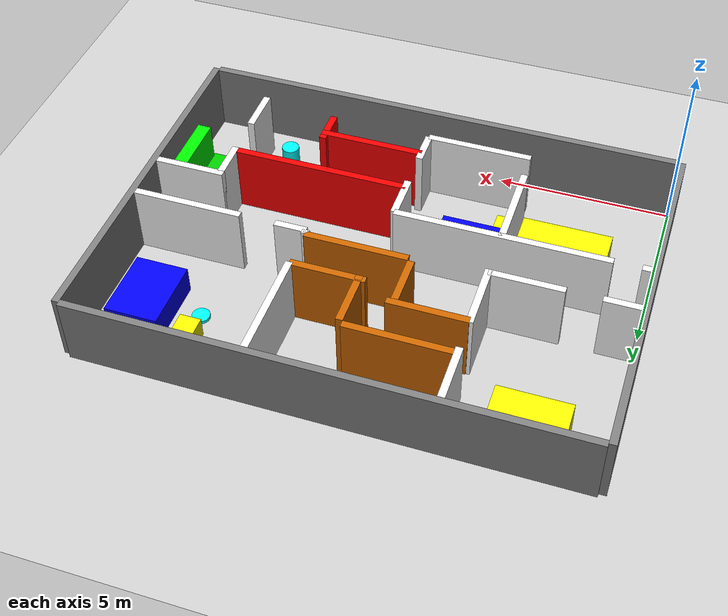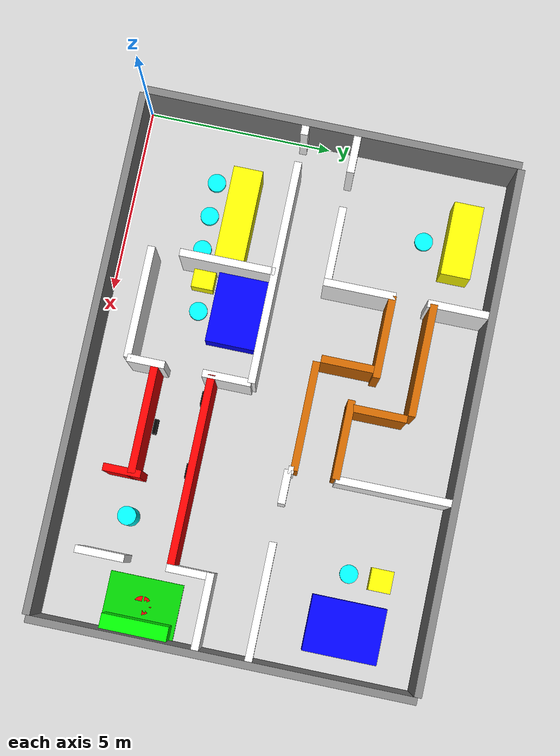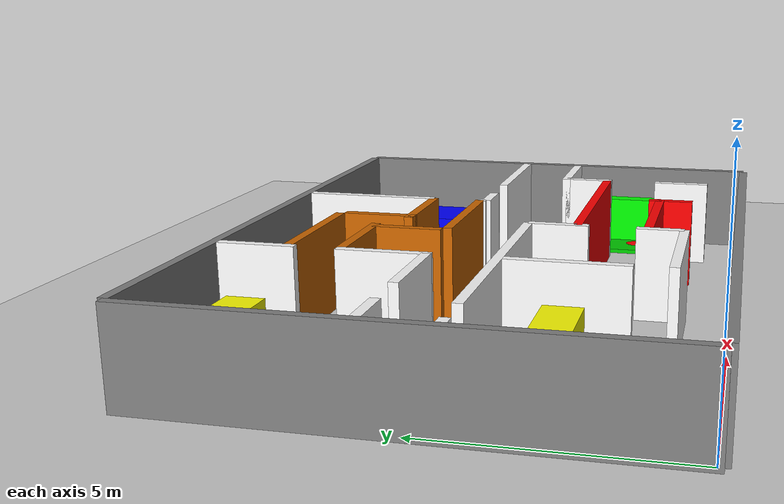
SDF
<?xml version="1.0"?>
<sdf version="1.6">
  <world name="omni_vs_diff_world">

    <!-- 地面和光源 -->
    <include><uri>model://ground_plane</uri></include>
    <include><uri>model://sun</uri></include>

    <!-- ==================== 外墙壁 (14m x 10m) ==================== -->
    <model name="wall_top"><pose>7 10.1 1 0 0 0</pose>
      <link name="link"><collision name="collision"><geometry><box><size>14 0.2 2</size></box></geometry></collision>
      <visual name="visual"><geometry><box><size>14 0.2 2</size></box></geometry><material><ambient>0.5 0.5 0.5 1</ambient></material></visual></link>
      <static>true</static></model>

    <model name="wall_bottom"><pose>7 -0.1 1 0 0 0</pose>
      <link name="link"><collision name="collision"><geometry><box><size>14 0.2 2</size></box></geometry></collision>
      <visual name="visual"><geometry><box><size>14 0.2 2</size></box></geometry><material><ambient>0.5 0.5 0.5 1</ambient></material></visual></link>
      <static>true</static></model>

    <model name="wall_left"><pose>-0.1 5 1 0 0 0</pose>
      <link name="link"><collision name="collision"><geometry><box><size>0.2 10.2 2</size></box></geometry></collision>
      <visual name="visual"><geometry><box><size>0.2 10.2 2</size></box></geometry><material><ambient>0.5 0.5 0.5 1</ambient></material></visual></link>
      <static>true</static></model>

    <model name="wall_right"><pose>14.1 5 1 0 0 0</pose>
      <link name="link"><collision name="collision"><geometry><box><size>0.2 10.2 2</size></box></geometry></collision>
      <visual name="visual"><geometry><box><size>0.2 10.2 2</size></box></geometry><material><ambient>0.5 0.5 0.5 1</ambient></material></visual></link>
      <static>true</static></model>

        <!-- ==================== 护士站 (4*4.3) ==================== -->
    <model name="hushizhan_right_a"><pose>4 9.1875 1 0 0 0</pose>
      <link name="link"><collision name="collision"><geometry><box><size>0.2 1.625 2</size></box></geometry></collision>
      <visual name="visual"><geometry><box><size>0.2 1.625 2</size></box></geometry><material><ambient>1 1 1 1</ambient></material></visual></link>
      <static>true</static></model>

    <model name="hushizhan_right_b"><pose>4 6.5625 1 0 0 0</pose>
      <link name="link"><collision name="collision"><geometry><box><size>0.2 1.925 2</size></box></geometry></collision>
      <visual name="visual"><geometry><box><size>0.2 1.925 2</size></box></geometry><material><ambient>1 1 1 1</ambient></material></visual></link>
      <static>true</static></model>

    <model name="hushizhan_bottom_a"><pose>0.5 5.7 1 0 0 0</pose>
      <link name="link"><collision name="collision"><geometry><box><size>1 0.2 2</size></box></geometry></collision>
      <visual name="visual"><geometry><box><size>1 0.2 2</size></box></geometry><material><ambient>1 1 1 1</ambient></material></visual></link>
      <static>true</static></model>

    <model name="hushizhan_bottom_b"><pose>2.975 5.7 1 0 0 0</pose>
      <link name="link"><collision name="collision"><geometry><box><size>2.05 0.2 2</size></box></geometry></collision>
      <visual name="visual"><geometry><box><size>2.05 0.2 2</size></box></geometry><material><ambient>1 1 1 1</ambient></material></visual></link>
      <static>true</static></model>

    <model name="hushizhan_tabble"><pose>2 9 0.6 0 0 0</pose>
      <link name="link"><collision name="collision"><geometry><box><size>2 0.8 1.2</size></box></geometry></collision>
      <visual name="visual"><geometry><box><size>2 0.8 1.2</size></box></geometry><material><ambient>1 1 0 1</ambient></material></visual></link>
      <static>true</static></model>

    <model name="service_1"><pose>2 8.05 0.05 0 0 0</pose>
      <link name="link"><visual name="visual"><geometry><cylinder><radius>0.25</radius><length>0.1</length></cylinder></geometry>
      <material><ambient>0 1 1 0</ambient></material></visual></link>
      <static>true</static></model>

    <!-- ==================== 横向错位通道 ==================== -->
    <model name="heng_top_a"><pose>5.5 8.55 1 0 0 0</pose>
      <link name="link"><collision name="collision"><geometry><box><size>3.0 0.2 2</size></box></geometry></collision>
      <visual name="visual"><geometry><box><size>3.0 0.2 2</size></box></geometry><material><ambient>0.8 0.4 0 1</ambient></material></visual></link>
      <static>true</static></model>

    <model name="heng_top_b"><pose>5.1 7.45 1 0 0 0</pose>
      <link name="link"><collision name="collision"><geometry><box><size>2.2 0.2 2</size></box></geometry></collision>
      <visual name="visual"><geometry><box><size>2.2 0.2 2</size></box></geometry><material><ambient>0.8 0.4 0 1</ambient></material></visual></link>
      <static>true</static></model>

    <model name="heng_left"><pose>6.0 6.7 1 0 0 0</pose>
      <link name="link"><collision name="collision"><geometry><box><size>0.2 1.5 2</size></box></geometry></collision>
      <visual name="visual"><geometry><box><size>0.2 1.5 2</size></box></geometry><material><ambient>0.8 0.4 0 1</ambient></material></visual></link>
      <static>true</static></model>

    <model name="heng_right"><pose>7.1 7.65 1 0 0 0</pose>
      <link name="link"><collision name="collision"><geometry><box><size>0.2 1.6 2</size></box></geometry></collision>
      <visual name="visual"><geometry><box><size>0.2 1.6 2</size></box></geometry><material><ambient>0.8 0.4 0 1</ambient></material></visual></link>
      <static>true</static></model>

    <model name="heng_bottom_a"><pose>7.95 6.95 1 0 0 0</pose>
      <link name="link"><collision name="collision"><geometry><box><size>2.1 0.2 2</size></box></geometry></collision>
      <visual name="visual"><geometry><box><size>2.1 0.2 2</size></box></geometry><material><ambient>0.8 0.4 0 1</ambient></material></visual></link>
      <static>true</static></model>

    <model name="heng_bottom_b"><pose>7.55 5.85 1 0 0 0</pose>
      <link name="link"><collision name="collision"><geometry><box><size>2.9 0.2 2</size></box></geometry></collision>
      <visual name="visual"><geometry><box><size>2.9 0.2 2</size></box></geometry><material><ambient>0.8 0.4 0 1</ambient></material></visual></link>
      <static>true</static></model>

    <!-- ==================== 病房A ==================== -->
    <model name="A_left_a"><pose>9 8.475 1 0 0 0</pose>
      <link name="link"><collision name="collision"><geometry><box><size>0.2 3.05 2</size></box></geometry></collision>
      <visual name="visual"><geometry><box><size>0.2 3.05 2</size></box></geometry><material><ambient>1 1 1 1</ambient></material></visual></link>
      <static>true</static></model>

    <model name="A_left_b"><pose>9 5.775 1 0 0 0</pose>
      <link name="link"><collision name="collision"><geometry><box><size>0.2 0.15 2</size></box></geometry></collision>
      <visual name="visual"><geometry><box><size>0.2 0.15 2</size></box></geometry><material><ambient>1 1 1 1</ambient></material></visual></link>
      <static>true</static></model>

    <model name="A_bottom_a"><pose>9.45 5.7 1 0 0 0</pose>
      <link name="link"><collision name="collision"><geometry><box><size>0.9 0.2 2</size></box></geometry></collision>
      <visual name="visual"><geometry><box><size>0.9 0.2 2</size></box></geometry><material><ambient>1 1 1 1</ambient></material></visual></link>
      <static>true</static></model>

    <model name="A_bottom_b"><pose>12.45 5.7 1 0 0 0</pose>
      <link name="link"><collision name="collision"><geometry><box><size>3.1 0.2 2</size></box></geometry></collision>
      <visual name="visual"><geometry><box><size>3.1 0.2 2</size></box></geometry><material><ambient>1 1 1 1</ambient></material></visual></link>
      <static>true</static></model>

    <model name="A_bed"><pose>12.75 8 0.4 0 0 0</pose>
      <link name="link"><collision name="collision"><geometry><box><size>1.5 2 0.8</size></box></geometry></collision>
      <visual name="visual"><geometry><box><size>1.5 2 0.8</size></box></geometry><material><ambient>0 0 1 1</ambient></material></visual></link>
      <static>true</static></model>

    <model name="A_tabble"><pose>11.3 8.7 0.3 0 0 0</pose>
      <link name="link"><collision name="collision"><geometry><box><size>0.6 0.6 0.6</size></box></geometry></collision>
      <visual name="visual"><geometry><box><size>0.6 0.6 0.6</size></box></geometry><material><ambient>1 1 0 1</ambient></material></visual></link>
      <static>true</static></model>

    <model name="service_2"><pose>11.3 7.85 0.05 0 0 0</pose>
      <link name="link"><visual name="visual"><geometry><cylinder><radius>0.25</radius><length>0.1</length></cylinder></geometry>
      <material><ambient>0 1 1 0</ambient></material></visual></link>
      <static>true</static></model>

    <!-- ==================== 长柜台服务区 ==================== -->
    <model name="long_top_a"><pose>0.125 4.3 1 0 0 0</pose>
      <link name="link"><collision name="collision"><geometry><box><size>0.25 0.2 2</size></box></geometry></collision>
      <visual name="visual"><geometry><box><size>0.25 0.2 2</size></box></geometry><material><ambient>1 1 1 1</ambient></material></visual></link>
      <static>true</static></model>

    <model name="long_top_b"><pose>4 4.3 1 0 0 0</pose>
      <link name="link"><collision name="collision"><geometry><box><size>6 0.2 2</size></box></geometry></collision>
      <visual name="visual"><geometry><box><size>6 0.2 2</size></box></geometry><material><ambient>1 1 1 1</ambient></material></visual></link>
      <static>true</static></model>

    <model name="long_tabble"><pose>2.5 3 0.6 0 0 0</pose>
      <link name="link"><collision name="collision"><geometry><box><size>2.5 0.8 1.2</size></box></geometry></collision>
      <visual name="visual"><geometry><box><size>2.5 0.8 1.2</size></box></geometry><material><ambient>1 1 0 1</ambient></material></visual></link>
      <static>true</static></model>

    <model name="service_3"><pose>2.5 2.15 0.05 0 0 0</pose>
      <link name="link"><visual name="visual"><geometry><cylinder><radius>0.25</radius><length>0.1</length></cylinder></geometry>
      <material><ambient>0 1 1 0</ambient></material></visual></link>
      <static>true</static></model>

    <model name="service_4"><pose>1.55 2.15 0.05 0 0 0</pose>
      <link name="link"><visual name="visual"><geometry><cylinder><radius>0.25</radius><length>0.1</length></cylinder></geometry>
      <material><ambient>0 1 1 0</ambient></material></visual></link>
      <static>true</static></model>

    <model name="service_5"><pose>3.45 2.15 0.05 0 0 0</pose>
      <link name="link"><visual name="visual"><geometry><cylinder><radius>0.25</radius><length>0.1</length></cylinder></geometry>
      <material><ambient>0 1 1 0</ambient></material></visual></link>
      <static>true</static></model>

    <!-- ==================== 病房B ==================== -->
    <model name="B_left"><pose>4 3.025 1 0 0 0</pose>
      <link name="link"><collision name="collision"><geometry><box><size>0.2 2.55 2</size></box></geometry></collision>
      <visual name="visual"><geometry><box><size>0.2 2.55 2</size></box></geometry><material><ambient>1 1 1 1</ambient></material></visual></link>
      <static>true</static></model>

    <model name="B_bottom"><pose>5.5 1 1 0 0 0</pose>
      <link name="link"><collision name="collision"><geometry><box><size>3 0.2 2</size></box></geometry></collision>
      <visual name="visual"><geometry><box><size>3 0.2 2</size></box></geometry><material><ambient>1 1 1 1</ambient></material></visual></link>
      <static>true</static></model>

    <model name="B_right_a"><pose>7 3.65 1 0 0 0</pose>
      <link name="link"><collision name="collision"><geometry><box><size>0.2 1.3 2</size></box></geometry></collision>
      <visual name="visual"><geometry><box><size>0.2 1.3 2</size></box></geometry><material><ambient>1 1 1 1</ambient></material></visual></link>
      <static>true</static></model>

    <model name="B_right_b"><pose>7 1.5 1 0 0 0</pose>
      <link name="link"><collision name="collision"><geometry><box><size>0.2 1 2</size></box></geometry></collision>
      <visual name="visual"><geometry><box><size>0.2 1 2</size></box></geometry><material><ambient>1 1 1 1</ambient></material></visual></link>
      <static>true</static></model>

    <model name="B_bed"><pose>5 3.55 0.4 0 0 0</pose>
      <link name="link"><collision name="collision"><geometry><box><size>2 1.5 0.8</size></box></geometry></collision>
      <visual name="visual"><geometry><box><size>2 1.5 0.8</size></box></geometry><material><ambient>0 0 1 1</ambient></material></visual></link>
      <static>true</static></model>

    <model name="B_tabble"><pose>4.3 2.4 0.3 0 0 0</pose>
      <link name="link"><collision name="collision"><geometry><box><size>0.6 0.6 0.6</size></box></geometry></collision>
      <visual name="visual"><geometry><box><size>0.6 0.6 0.6</size></box></geometry><material><ambient>1 1 0 1</ambient></material></visual></link>
      <static>true</static></model>

    <model name="service_6"><pose>5.15 2.4 0.05 0 0 0</pose>
      <link name="link"><visual name="visual"><geometry><cylinder><radius>0.25</radius><length>0.1</length></cylinder></geometry>
      <material><ambient>0 1 1 0</ambient></material></visual></link>
      <static>true</static></model>

    <!-- ==================== 狭窄回转区 ==================== -->
    <model name="L_top"><pose>9.5 3.25 1 0 0 0</pose>
      <link name="link"><collision name="collision"><geometry><box><size>5 0.2 2</size></box></geometry></collision>
      <visual name="visual"><geometry><box><size>5 0.2 2</size></box></geometry><material><ambient>1 0 0 1</ambient></material></visual></link>
      <static>true</static></model>

    <model name="L_bottom"><pose>8.5 1.75 1 0 0 0</pose>
      <link name="link"><collision name="collision"><geometry><box><size>3 0.2 2</size></box></geometry></collision>
      <visual name="visual"><geometry><box><size>3 0.2 2</size></box></geometry><material><ambient>1 0 0 1</ambient></material></visual></link>
      <static>true</static></model>

    <model name="L_shu"><pose>9.9 1.5 1 0 0 0</pose>
      <link name="link"><collision name="collision"><geometry><box><size>0.2 1 2</size></box></geometry></collision>
      <visual name="visual"><geometry><box><size>0.2 1 2</size></box></geometry><material><ambient>1 0 0 1</ambient></material></visual></link>
      <static>true</static></model>

    <model name="L_yuanzhu"><pose>11 1.8 0.6 0 0 0</pose>
      <link name="link"><collision name="collision"><geometry><cylinder><radius>0.25</radius><length>1.2</length></cylinder></geometry></collision>
      <visual name="visual"><geometry><cylinder><radius>0.25</radius><length>1.2</length></cylinder></geometry><material><ambient>0 1 1 1</ambient></material></visual></link>
      <static>true</static></model>

    <model name="narrow_obs_L1"><pose>7.5 3.05 0.2 0 0 0</pose>
      <link name="link">
        <collision name="collision"><geometry><box><size>0.4 0.1 0.4</size></box></geometry></collision>
        <visual name="visual"><geometry><box><size>0.4 0.1 0.4</size></box></geometry>
        <material><ambient>0 0 0 1</ambient></material></visual>
      </link>
      <static>true</static>
    </model>

    <model name="narrow_obs_L2"><pose>8.5 1.95 0.2 0 0 0</pose>
      <link name="link">
        <collision name="collision"><geometry><box><size>0.4 0.1 0.4</size></box></geometry></collision>
        <visual name="visual"><geometry><box><size>0.4 0.1 0.4</size></box></geometry>
        <material><ambient>0 0 0 1</ambient></material></visual>
      </link>
      <static>true</static>
    </model>

    <model name="narrow_obs_L3"><pose>9.5 3.05 0.2 0 0 0</pose>
      <link name="link">
        <collision name="collision"><geometry><box><size>0.4 0.1 0.4</size></box></geometry></collision>
        <visual name="visual"><geometry><box><size>0.4 0.1 0.4</size></box></geometry>
        <material><ambient>0 0 0 1</ambient></material></visual>
      </link>
      <static>true</static>
    </model>

    <!-- ==================== 充电区 ==================== -->
    <model name="charge_top"><pose>13 4.3 1 0 0 0</pose>
      <link name="link"><collision name="collision"><geometry><box><size>2 0.2 2</size></box></geometry></collision>
      <visual name="visual"><geometry><box><size>2 0.2 2</size></box></geometry><material><ambient>1 1 1 1</ambient></material></visual></link>
      <static>true</static></model>

    <model name="charge_left_lower"><pose>12.1 1.4 1 0 0 0</pose>
      <link name="link"><collision name="collision"><geometry><box><size>0.2 1.3 2</size></box></geometry></collision>
      <visual name="visual"><geometry><box><size>0.2 1.3 2</size></box></geometry><material><ambient>1 1 1 1</ambient></material></visual></link>
      <static>true</static></model>

    <model name="charge_left_upper"><pose>12.1 3.725 1 0 0 0</pose>
      <link name="link"><collision name="collision"><geometry><box><size>0.2 1.15 2</size></box></geometry></collision>
      <visual name="visual"><geometry><box><size>0.2 1.15 2</size></box></geometry><material><ambient>1 1 1 1</ambient></material></visual></link>
      <static>true</static></model>

    <model name="charge"><pose>13.8 2.6 0.6 0 0 0</pose>
      <link name="link"><collision name="collision"><geometry><box><size>0.4 1.8 1.2</size></box></geometry></collision>
      <visual name="visual"><geometry><box><size>0.4 1.8 1.2</size></box></geometry><material><ambient>0 1 0 1</ambient></material></visual></link>
      <static>true</static></model>

    <model name="charge_sign"><pose>13.25 2.6 0.05 0 0 0</pose>
      <link name="link"><visual name="visual"><geometry><box><size>1.5 2 0.1</size></box></geometry>
      <material><ambient>0 0.8 0 0</ambient></material></visual></link>
      <static>true</static></model>

    <model name="service_7"><pose>13.25 2.6 0.05 0 0 0</pose>
      <link name="link"><visual name="visual"><geometry><cylinder><radius>0.25</radius><length>0.1</length></cylinder></geometry>
      <material><ambient>1 0 0 0</ambient></material></visual></link>
      <static>true</static></model>

  </world>
</sdf>
